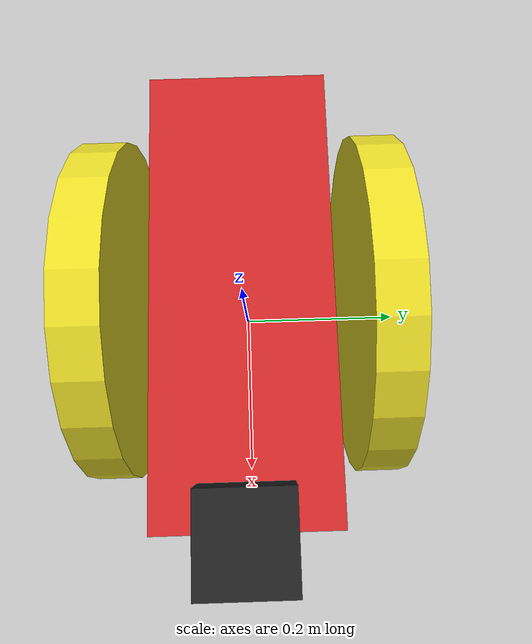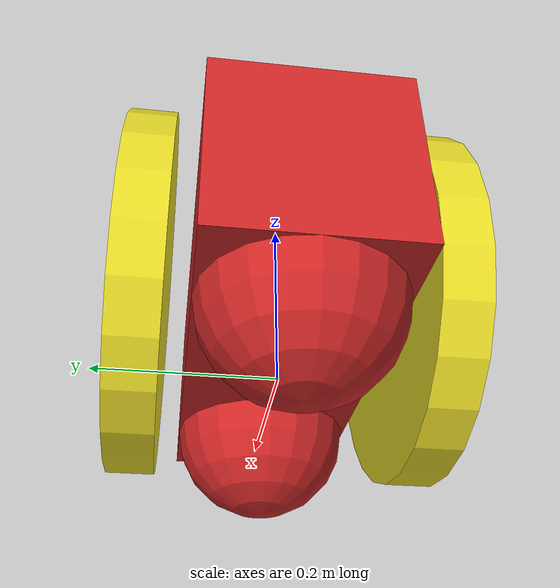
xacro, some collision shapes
<robot name="my_robot" xmlns:xacro="http://www.ros.org/wiki/xacro">

  <!--Sensor and actuator plugin-->
  <xacro:include filename="$(find my_robot)/urdf/my_robot.gazebo" />

  <link name="robot_footprint"></link>

  <joint name="robot_footprint_joint" type="fixed">
    <origin xyz="0 0 0.1" rpy="0 0 0" />
    <parent link="robot_footprint"/>
    <child link="chassis" />
  </joint>

  <!--chassis-->
  <link name='chassis'>
    <pose>0 0 0.2 0 0 0</pose>

    <inertial>
      <mass value="15.0"/>
      <origin xyz="0.0 0 0" rpy=" 0 0 0"/>
      <inertia
          ixx="0.1" ixy="0" ixz="0"
          iyy="0.1" iyz="0"
          izz="0.1"
      />
    </inertial>

    <collision name='collision'>
      <origin xyz="0 0 0" rpy=" 0 0 0"/>
      <geometry>
        <box size=".5 .2 .2"/>
      </geometry>
    </collision>

    <visual name='chassis_visual'>
      <origin xyz="0 0 0" rpy=" 0 0 0"/>
      <geometry>
        <box size=".5 .2 .2"/>
      </geometry>
    </visual>

    <collision name='back_caster_collision'>
      <origin xyz="-0.15 0 -0.1" rpy=" 0 0 0"/>
      <geometry>
        <sphere radius="0.099"/>
      </geometry>
    </collision>

    <visual name='back_caster_visual'>
      <origin xyz="-0.15 0 -0.1" rpy=" 0 0 0"/>
      <geometry>
        <sphere radius="0.1"/>
      </geometry>
    </visual>

    <collision name='front_caster_collision'>
      <origin xyz="0.15 0 -0.1" rpy=" 0 0 0"/>
      <geometry>
        <sphere radius="0.099"/>
      </geometry>
    </collision>

    <visual name='front_caster_visual'>
      <origin xyz="0.15 0 -0.1" rpy=" 0 0 0"/>
      <geometry>
        <sphere radius="0.1"/>
      </geometry>
    </visual>

  </link>

  <!--left_wheel-->
  <link name='left_wheel'>
    <pose>0 0 0.2 0 0 0</pose>

    <inertial>
      <mass value="5.0"/>
      <origin xyz="0.0 0 0" rpy=" 0 1.5707 1.5707"/>
      <inertia
          ixx="0.1" ixy="0" ixz="0"
          iyy="0.1" iyz="0"
          izz="0.1"
      />
    </inertial>

    <collision name='left_wheel_collision'>
      <origin xyz="0.0 0 0" rpy=" 0 1.5707 1.5707"/>
      <geometry>
        <cylinder length="0.05" radius="0.2"/>
      </geometry>
    </collision>

    <visual name='left_wheel_visual'>
      <origin xyz="0.0 0 0" rpy=" 0 1.5707 1.5707"/>
      <geometry>
        <cylinder length="0.05" radius="0.2"/>
      </geometry>
    </visual>

  </link>

  <!--right_wheel-->
  <link name='right_wheel'>
    <pose>0 0 0.2 0 0 0</pose>

    <inertial>
      <mass value="5.0"/>
      <origin xyz="0.0 0 0" rpy=" 0 1.5707 1.5707"/>
      <inertia
          ixx="0.1" ixy="0" ixz="0"
          iyy="0.1" iyz="0"
          izz="0.1"
      />
    </inertial>

    <collision name='right_wheel_collision'>
      <origin xyz="0 0 0" rpy=" 0 1.5707 1.5707"/>
      <geometry>
        <cylinder length="0.05" radius="0.2"/>
      </geometry>
    </collision>

    <visual name='right_wheel_visual'>
      <origin xyz="0.0 0 0" rpy=" 0 1.5707 1.5707"/>
      <geometry>
        <cylinder length="0.05" radius="0.2"/>
      </geometry>
    </visual>

  </link>

  <!--camera_joint-->
  <joint name="camera_joint" type="fixed">
    <axis xyz="0 1 0" />
    <origin xyz="0.2 0 0" rpy="0 0 0"/>
    <parent link="chassis"/>
    <child link="camera"/>
  </joint>

  <!--camera-->
  <link name="camera">
    <inertial>
      <mass value="0.1" />
      <origin xyz="0 0 0" rpy="0 0 0"/>
      <inertia ixx="1e-6" ixy="0" ixz="0" iyy="1e-6" iyz="0" izz="1e-6"/>
    </inertial>

    <collision name='camera_collision'>
      <origin xyz="0 0 0" rpy="0 0 0"/>
      <geometry>
        <box size="0.05 0.05 0.05"/>
      </geometry>
    </collision>

    <visual name='camera_visual'>
      <origin xyz="0 0 0" rpy="0 0 0"/>
      <geometry>
        <box size="0.05 0.05 0.05"/>
      </geometry>
    </visual>

    <xacro:macro name="box_inertia" mass="0.1" x="0.05" y="0.05" z="0.05">
      <origin xyz="0 0 0" rpy="0 0 0"/>
    </xacro:macro>

  </link>

  <!--lidar_joint-->
  <joint name="hokuyo_joint" type="fixed">
    <axis xyz="0 1 0" />
    <origin xyz="0.25 0 0.1" rpy="0 0 0"/>
    <parent link="chassis"/>
    <child link="hokuyo"/>
  </joint>

  <!--lidar-->
  <link name="hokuyo">
    <collision name='hokuyo_collision'>
      <origin xyz="0 0 0" rpy="0 0 0"/>
      <geometry>
        <box size="0.1 0.1 0.1"/>
      </geometry>
    </collision>

    <visual name='hokuyo_visual'>
      <origin xyz="0 0 0" rpy="0 0 0"/>
      <geometry>
        <mesh filename="package://my_robot/meshes/hokuyo.dae"/>
      </geometry>
    </visual>

    <inertial>
      <mass value="1e-5" />
      <origin xyz="0 0 0" rpy="0 0 0"/>
      <inertia ixx="1e-6" ixy="0" ixz="0" iyy="1e-6" iyz="0" izz="1e-6" />
    </inertial>

  </link>

  <!--Wheel Joints-->
  <joint name="left_wheel_hinge" type="continuous">
    <origin xyz="0 0.15 0" rpy="0 0 0" />
    <parent link="chassis"/>
    <child link="left_wheel" />
    <axis xyz="0 1 0" rpy="0 0 0"/>
    <limit effort="10000" velocity="1000"/>
    <dynamics damping="1.0" friction="1.0"/>
  </joint>

  <joint name="right_wheel_hinge" type="continuous">
    <origin xyz="0 -0.15 0" rpy="0 0 0" />
    <parent link="chassis"/>
    <child link="right_wheel" />
    <axis xyz="0 1 0" rpy="0 0 0"/>
    <limit effort="10000" velocity="1000"/>
    <dynamics damping="1.0" friction="1.0"/>
  </joint>

  <!--add color-->
  <gazebo reference="left_wheel">
    <material>Gazebo/Yellow</material>
  </gazebo>

  <gazebo reference="right_wheel">
    <material>Gazebo/Yellow</material>
  </gazebo>

  <gazebo reference="chassis">
    <material>Gazebo/Red</material>
  </gazebo>

  <gazebo reference="camera">
    <material>Gazebo/Green</material>
  </gazebo>

  <gazebo reference="hokuyo">
    <material>Gazebo/Black</material>
  </gazebo>

  <!--RGBD Camera joint-->
  <joint name="camera_optical_joint" type="fixed">
    <origin xyz="0 0 0" rpy="-1.5707 0 -1.5707"/>
    <parent link="camera"/>
    <child link="camera_link_optical"/>
  </joint>

  <!--RGBD Camera-->
  <link name="camera_link_optical">
  </link>

</robot>
